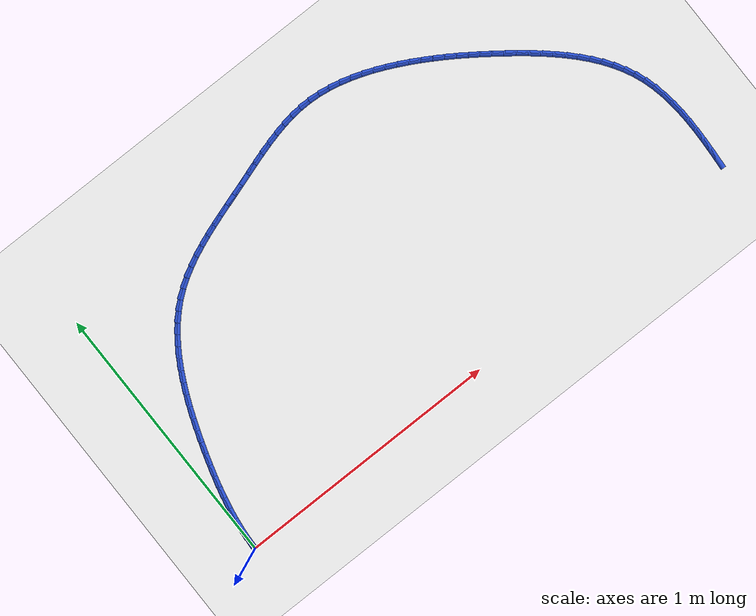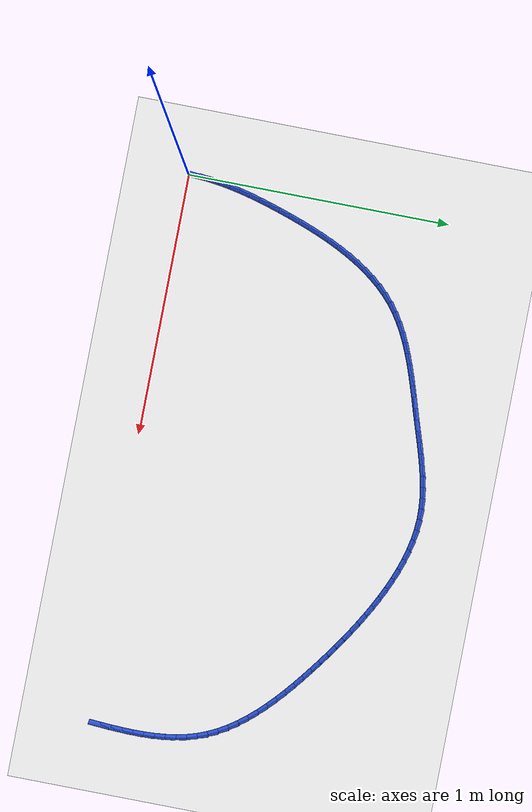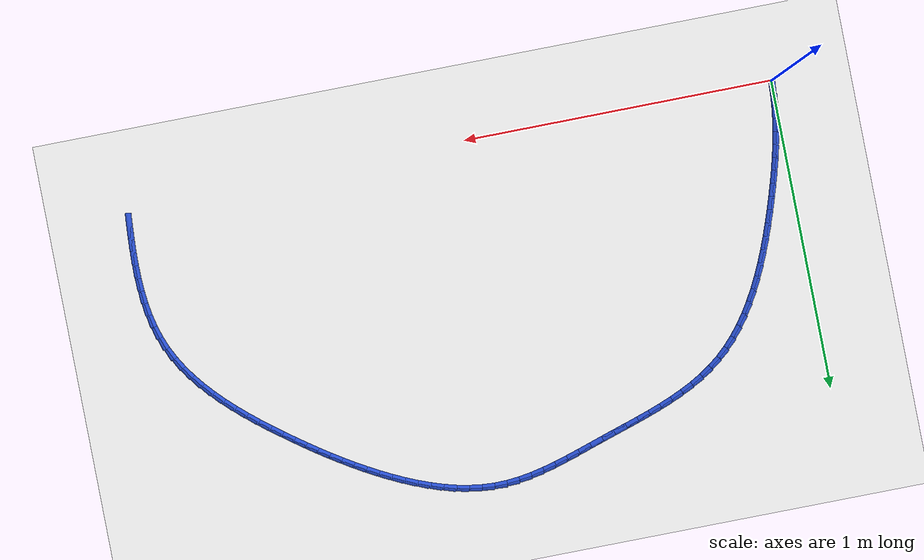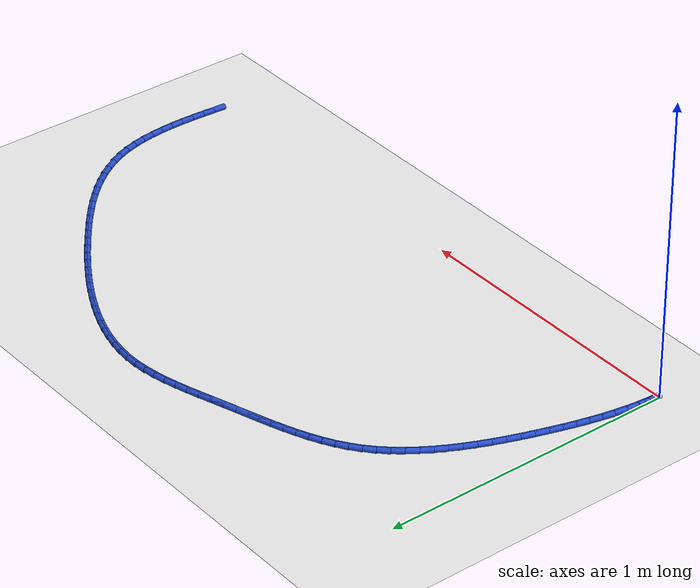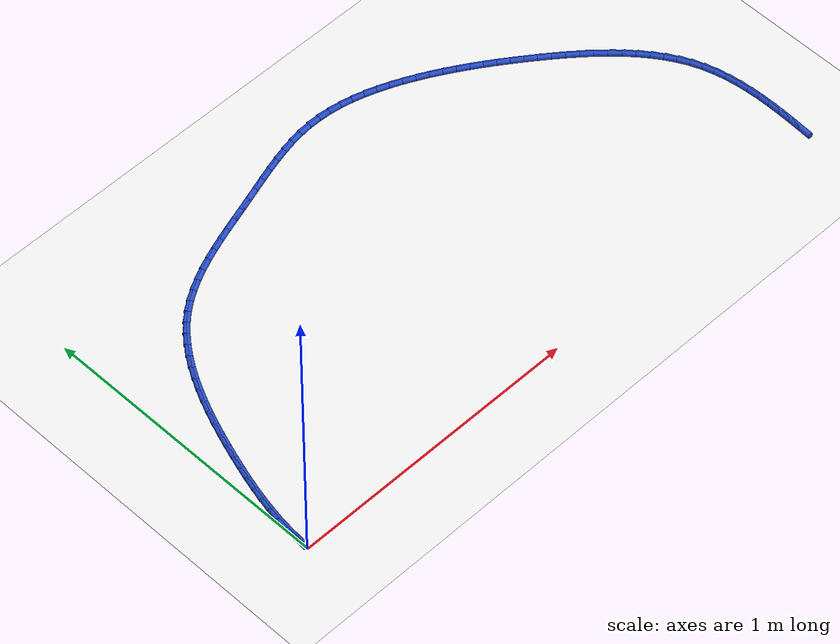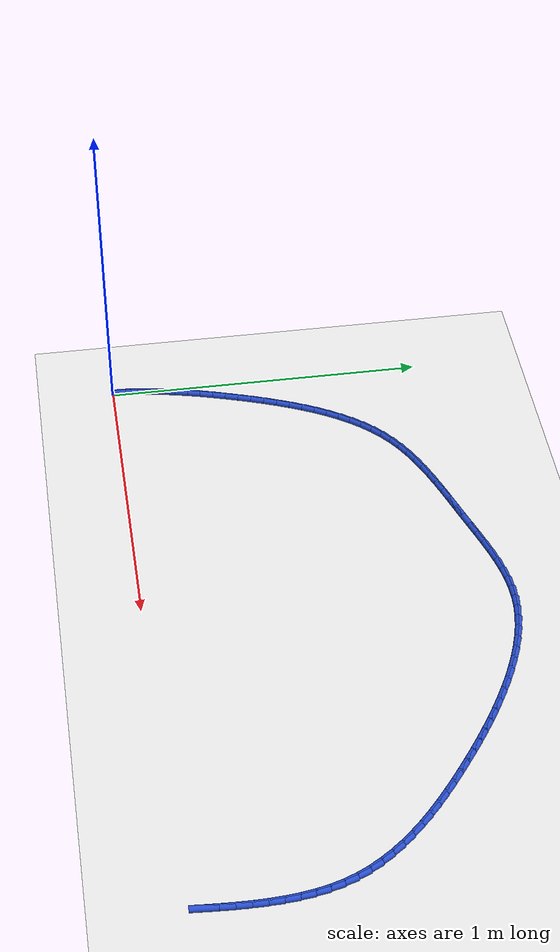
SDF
<sdf version="1.6">
 <world name="default">
  <model name="ground_plane">
   <static>1</static>
   <link name="link">
    <collision name="collision">
     <geometry><plane><normal>0 0 1</normal><size>100 100</size></plane></geometry>
     <surface><friction><ode><mu>100</mu><mu2>50</mu2></ode></friction></surface>
    </collision>
    <visual name="visual">
     <cast_shadows>0</cast_shadows>
     <geometry><plane><normal>0 0 1</normal><size>100 100</size></plane></geometry>
     <material>
      <script><uri>file://media/materials/scripts/gazebo.material</uri><name>Gazebo/WhiteGlow</name></script>
     </material>
    </visual>
   </link>
  </model>
  <model name="line">
   <link name="link_1">
    <pose>0.0016940753056678942 0.04102009919093619 0.01 0 1.57 1.4836181525590477</pose>
    <collision name="collision">
     <geometry><cylinder><radius>0.01</radius><length>0.08</length></cylinder></geometry>
    </collision>
    <visual name="visual">
     <material>
      <script><name>Gazebo/Blue</name><uri>file://media/materials/scripts/gazebo.material</uri></script>
     </material>
     <geometry><cylinder><radius>0.01</radius><length>0.08</length></cylinder></geometry>
    </visual>
   </link>
   <link name="link_2">
    <pose>0.00526283917718724 0.08185277789360729 0.01 0 1.57 1.441261052110527</pose>
    <collision name="collision">
     <geometry><cylinder><radius>0.01</radius><length>0.08</length></cylinder></geometry>
    </collision>
    <visual name="visual">
     <material>
      <script><name>Gazebo/Blue</name><uri>file://media/materials/scripts/gazebo.material</uri></script>
     </material>
     <geometry><cylinder><radius>0.01</radius><length>0.08</length></cylinder></geometry>
    </visual>
   </link>
   <link name="link_3">
    <pose>0.010562880971389308 0.12253949257791172 0.01 0 1.57 1.402671206864249</pose>
    <collision name="collision">
     <geometry><cylinder><radius>0.01</radius><length>0.08</length></cylinder></geometry>
    </collision>
    <visual name="visual">
     <material>
      <script><name>Gazebo/Blue</name><uri>file://media/materials/scripts/gazebo.material</uri></script>
     </material>
     <geometry><cylinder><radius>0.01</radius><length>0.08</length></cylinder></geometry>
    </visual>
   </link>
   <link name="link_4">
    <pose>0.01745079004510542 0.16312169971374776 0.01 0 1.57 1.3679834656666097</pose>
    <collision name="collision">
     <geometry><cylinder><radius>0.01</radius><length>0.08</length></cylinder></geometry>
    </collision>
    <visual name="visual">
     <material>
      <script><name>Gazebo/Blue</name><uri>file://media/materials/scripts/gazebo.material</uri></script>
     </material>
     <geometry><cylinder><radius>0.01</radius><length>0.08</length></cylinder></geometry>
    </visual>
   </link>
   <link name="link_5">
    <pose>0.02578315575516693 0.2036408557710138 0.01 0 1.57 1.3372603106143606</pose>
    <collision name="collision">
     <geometry><cylinder><radius>0.01</radius><length>0.08</length></cylinder></geometry>
    </collision>
    <visual name="visual">
     <material>
      <script><name>Gazebo/Blue</name><uri>file://media/materials/scripts/gazebo.material</uri></script>
     </material>
     <geometry><cylinder><radius>0.01</radius><length>0.08</length></cylinder></geometry>
    </visual>
   </link>
   <link name="link_6">
    <pose>0.03541656745840518 0.2441384172196081 0.01 0 1.57 1.3105073156449456</pose>
    <collision name="collision">
     <geometry><cylinder><radius>0.01</radius><length>0.08</length></cylinder></geometry>
    </collision>
    <visual name="visual">
     <material>
      <script><name>Gazebo/Blue</name><uri>file://media/materials/scripts/gazebo.material</uri></script>
     </material>
     <geometry><cylinder><radius>0.01</radius><length>0.08</length></cylinder></geometry>
    </visual>
   </link>
   <link name="link_7">
    <pose>0.04620761451165147 0.2846558405294289 0.01 0 1.57 1.2876881151883557</pose>
    <collision name="collision">
     <geometry><cylinder><radius>0.01</radius><length>0.08</length></cylinder></geometry>
    </collision>
    <visual name="visual">
     <material>
      <script><name>Gazebo/Blue</name><uri>file://media/materials/scripts/gazebo.material</uri></script>
     </material>
     <geometry><cylinder><radius>0.01</radius><length>0.08</length></cylinder></geometry>
    </visual>
   </link>
   <link name="link_8">
    <pose>0.05801288627173715 0.3252345821703746 0.01 0 1.57 1.2687377520558818</pose>
    <collision name="collision">
     <geometry><cylinder><radius>0.01</radius><length>0.08</length></cylinder></geometry>
    </collision>
    <visual name="visual">
     <material>
      <script><name>Gazebo/Blue</name><uri>file://media/materials/scripts/gazebo.material</uri></script>
     </material>
     <geometry><cylinder><radius>0.01</radius><length>0.08</length></cylinder></geometry>
    </visual>
   </link>
   <link name="link_9">
    <pose>0.07068897209549357 0.36591609861234353 0.01 0 1.57 1.2533195616153858</pose>
    <collision name="collision">
     <geometry><cylinder><radius>0.01</radius><length>0.08</length></cylinder></geometry>
    </collision>
    <visual name="visual">
     <material>
      <script><name>Gazebo/Blue</name><uri>file://media/materials/scripts/gazebo.material</uri></script>
     </material>
     <geometry><cylinder><radius>0.01</radius><length>0.08</length></cylinder></geometry>
    </visual>
   </link>
   <link name="link_10">
    <pose>0.08410109394157478 0.40673311828321956 0.01 0 1.57 1.2373657290991258</pose>
    <collision name="collision">
     <geometry><cylinder><radius>0.01</radius><length>0.08</length></cylinder></geometry>
    </collision>
    <visual name="visual">
     <material>
      <script><name>Gazebo/Blue</name><uri>file://media/materials/scripts/gazebo.material</uri></script>
     </material>
     <geometry><cylinder><radius>0.01</radius><length>0.08</length></cylinder></geometry>
    </visual>
   </link>
   <link name="link_11">
    <pose>0.09824954599700263 0.4475818040529693 0.01 0 1.57 1.217608481108015</pose>
    <collision name="collision">
     <geometry><cylinder><radius>0.01</radius><length>0.08</length></cylinder></geometry>
    </collision>
    <visual name="visual">
     <material>
      <script><name>Gazebo/Blue</name><uri>file://media/materials/scripts/gazebo.material</uri></script>
     </material>
     <geometry><cylinder><radius>0.01</radius><length>0.08</length></cylinder></geometry>
    </visual>
   </link>
   <link name="link_12">
    <pose>0.11324170555073036 0.48825005180185016 0.01 0 1.57 1.193781997664022</pose>
    <collision name="collision">
     <geometry><cylinder><radius>0.01</radius><length>0.08</length></cylinder></geometry>
    </collision>
    <visual name="visual">
     <material>
      <script><name>Gazebo/Blue</name><uri>file://media/materials/scripts/gazebo.material</uri></script>
     </material>
     <geometry><cylinder><radius>0.01</radius><length>0.08</length></cylinder></geometry>
    </visual>
   </link>
   <link name="link_13">
    <pose>0.12918788988161972 0.528522784916314 0.01 0 1.57 1.1656390461936397</pose>
    <collision name="collision">
     <geometry><cylinder><radius>0.01</radius><length>0.08</length></cylinder></geometry>
    </collision>
    <visual name="visual">
     <material>
      <script><name>Gazebo/Blue</name><uri>file://media/materials/scripts/gazebo.material</uri></script>
     </material>
     <geometry><cylinder><radius>0.01</radius><length>0.08</length></cylinder></geometry>
    </visual>
   </link>
   <link name="link_14">
    <pose>0.1461984162685323 0.5681849267828125 0.01 0 1.57 1.1328696306898038</pose>
    <collision name="collision">
     <geometry><cylinder><radius>0.01</radius><length>0.08</length></cylinder></geometry>
    </collision>
    <visual name="visual">
     <material>
      <script><name>Gazebo/Blue</name><uri>file://media/materials/scripts/gazebo.material</uri></script>
     </material>
     <geometry><cylinder><radius>0.01</radius><length>0.08</length></cylinder></geometry>
    </visual>
   </link>
   <link name="link_15">
    <pose>0.16438360199032978 0.6070214007877978 0.01 0 1.57 1.0951087397610708</pose>
    <collision name="collision">
     <geometry><cylinder><radius>0.01</radius><length>0.08</length></cylinder></geometry>
    </collision>
    <visual name="visual">
     <material>
      <script><name>Gazebo/Blue</name><uri>file://media/materials/scripts/gazebo.material</uri></script>
     </material>
     <geometry><cylinder><radius>0.01</radius><length>0.08</length></cylinder></geometry>
    </visual>
   </link>
   <link name="link_16">
    <pose>0.18385376432587386 0.6448171303177218 0.01 0 1.57 1.0519492333334464</pose>
    <collision name="collision">
     <geometry><cylinder><radius>0.01</radius><length>0.08</length></cylinder></geometry>
    </collision>
    <visual name="visual">
     <material>
      <script><name>Gazebo/Blue</name><uri>file://media/materials/scripts/gazebo.material</uri></script>
     </material>
     <geometry><cylinder><radius>0.01</radius><length>0.08</length></cylinder></geometry>
    </visual>
   </link>
   <link name="link_17">
    <pose>0.20471922055402605 0.6813570387590363 0.01 0 1.57 1.002963285717442</pose>
    <collision name="collision">
     <geometry><cylinder><radius>0.01</radius><length>0.08</length></cylinder></geometry>
    </collision>
    <visual name="visual">
     <material>
      <script><name>Gazebo/Blue</name><uri>file://media/materials/scripts/gazebo.material</uri></script>
     </material>
     <geometry><cylinder><radius>0.01</radius><length>0.08</length></cylinder></geometry>
    </visual>
   </link>
   <link name="link_18">
    <pose>0.22709028795364813 0.7164260494981931 0.01 0 1.57 0.9477364884585241</pose>
    <collision name="collision">
     <geometry><cylinder><radius>0.01</radius><length>0.08</length></cylinder></geometry>
    </collision>
    <visual name="visual">
     <material>
      <script><name>Gazebo/Blue</name><uri>file://media/materials/scripts/gazebo.material</uri></script>
     </material>
     <geometry><cylinder><radius>0.01</radius><length>0.08</length></cylinder></geometry>
    </visual>
   </link>
   <link name="link_19">
    <pose>0.2510772838036017 0.7498090859216442 0.01 0 1.57 0.8859188049033503</pose>
    <collision name="collision">
     <geometry><cylinder><radius>0.01</radius><length>0.08</length></cylinder></geometry>
    </collision>
    <visual name="visual">
     <material>
      <script><name>Gazebo/Blue</name><uri>file://media/materials/scripts/gazebo.material</uri></script>
     </material>
     <geometry><cylinder><radius>0.01</radius><length>0.08</length></cylinder></geometry>
    </visual>
   </link>
   <link name="link_20">
    <pose>0.2767905253827485 0.7812910714158415 0.01 0 1.57 0.8172951377439855</pose>
    <collision name="collision">
     <geometry><cylinder><radius>0.01</radius><length>0.08</length></cylinder></geometry>
    </collision>
    <visual name="visual">
     <material>
      <script><name>Gazebo/Blue</name><uri>file://media/materials/scripts/gazebo.material</uri></script>
     </material>
     <geometry><cylinder><radius>0.01</radius><length>0.08</length></cylinder></geometry>
    </visual>
   </link>
   <link name="link_21">
    <pose>0.30434032996995014 0.810656929367237 0.01 0 1.57 0.7418740528319384</pose>
    <collision name="collision">
     <geometry><cylinder><radius>0.01</radius><length>0.08</length></cylinder></geometry>
    </collision>
    <visual name="visual">
     <material>
      <script><name>Gazebo/Blue</name><uri>file://media/materials/scripts/gazebo.material</uri></script>
     </material>
     <geometry><cylinder><radius>0.01</radius><length>0.08</length></cylinder></geometry>
    </visual>
   </link>
   <link name="link_22">
    <pose>0.33383701484406814 0.8376915831622822 0.01 0 1.57 0.6610400251546933</pose>
    <collision name="collision">
     <geometry><cylinder><radius>0.01</radius><length>0.08</length></cylinder></geometry>
    </collision>
    <visual name="visual">
     <material>
      <script><name>Gazebo/Blue</name><uri>file://media/materials/scripts/gazebo.material</uri></script>
     </material>
     <geometry><cylinder><radius>0.01</radius><length>0.08</length></cylinder></geometry>
    </visual>
   </link>
   <link name="link_23">
    <pose>0.36536748216538006 0.8622151208831176 0.01 0 1.57 0.5845602938426694</pose>
    <collision name="collision">
     <geometry><cylinder><radius>0.01</radius><length>0.08</length></cylinder></geometry>
    </collision>
    <visual name="visual">
     <material>
      <script><name>Gazebo/Blue</name><uri>file://media/materials/scripts/gazebo.material</uri></script>
     </material>
     <geometry><cylinder><radius>0.01</radius><length>0.08</length></cylinder></geometry>
    </visual>
   </link>
   <link name="link_24">
    <pose>0.39881773146359645 0.8843493450722034 0.01 0 1.57 0.517694273193901</pose>
    <collision name="collision">
     <geometry><cylinder><radius>0.01</radius><length>0.08</length></cylinder></geometry>
    </collision>
    <visual name="visual">
     <material>
      <script><name>Gazebo/Blue</name><uri>file://media/materials/scripts/gazebo.material</uri></script>
     </material>
     <geometry><cylinder><radius>0.01</radius><length>0.08</length></cylinder></geometry>
    </visual>
   </link>
   <link name="link_25">
    <pose>0.43397153348185524 0.9043695848987165 0.01 0 1.57 0.4606440549411995</pose>
    <collision name="collision">
     <geometry><cylinder><radius>0.01</radius><length>0.08</length></cylinder></geometry>
    </collision>
    <visual name="visual">
     <material>
      <script><name>Gazebo/Blue</name><uri>file://media/materials/scripts/gazebo.material</uri></script>
     </material>
     <geometry><cylinder><radius>0.01</radius><length>0.08</length></cylinder></geometry>
    </visual>
   </link>
   <link name="link_26">
    <pose>0.4706118496830646 0.9225523849044123 0.01 0 1.57 0.413215427790466</pose>
    <collision name="collision">
     <geometry><cylinder><radius>0.01</radius><length>0.08</length></cylinder></geometry>
    </collision>
    <visual name="visual">
     <material>
      <script><name>Gazebo/Blue</name><uri>file://media/materials/scripts/gazebo.material</uri></script>
     </material>
     <geometry><cylinder><radius>0.01</radius><length>0.08</length></cylinder></geometry>
    </visual>
   </link>
   <link name="link_27">
    <pose>0.5085216415301321 0.9391742896310457 0.01 0 1.57 0.37502189391123536</pose>
    <collision name="collision">
     <geometry><cylinder><radius>0.01</radius><length>0.08</length></cylinder></geometry>
    </collision>
    <visual name="visual">
     <material>
      <script><name>Gazebo/Blue</name><uri>file://media/materials/scripts/gazebo.material</uri></script>
     </material>
     <geometry><cylinder><radius>0.01</radius><length>0.08</length></cylinder></geometry>
    </visual>
   </link>
   <link name="link_28">
    <pose>0.5474838704859656 0.9545118436203719 0.01 0 1.57 0.34561345637982777</pose>
    <collision name="collision">
     <geometry><cylinder><radius>0.01</radius><length>0.08</length></cylinder></geometry>
    </collision>
    <visual name="visual">
     <material>
      <script><name>Gazebo/Blue</name><uri>file://media/materials/scripts/gazebo.material</uri></script>
     </material>
     <geometry><cylinder><radius>0.01</radius><length>0.08</length></cylinder></geometry>
    </visual>
   </link>
   <link name="link_29">
    <pose>0.5872814980134727 0.9688415914141462 0.01 0 1.57 0.3245646430097049</pose>
    <collision name="collision">
     <geometry><cylinder><radius>0.01</radius><length>0.08</length></cylinder></geometry>
    </collision>
    <visual name="visual">
     <material>
      <script><name>Gazebo/Blue</name><uri>file://media/materials/scripts/gazebo.material</uri></script>
     </material>
     <geometry><cylinder><radius>0.01</radius><length>0.08</length></cylinder></geometry>
    </visual>
   </link>
   <link name="link_30">
    <pose>0.6276974855755613 0.9824400775541233 0.01 0 1.57 0.3115293324298856</pose>
    <collision name="collision">
     <geometry><cylinder><radius>0.01</radius><length>0.08</length></cylinder></geometry>
    </collision>
    <visual name="visual">
     <material>
      <script><name>Gazebo/Blue</name><uri>file://media/materials/scripts/gazebo.material</uri></script>
     </material>
     <geometry><cylinder><radius>0.01</radius><length>0.08</length></cylinder></geometry>
    </visual>
   </link>
   <link name="link_31">
    <pose>0.6685147946351391 0.9955838465820589 0.01 0 1.57 0.3062719283524712</pose>
    <collision name="collision">
     <geometry><cylinder><radius>0.01</radius><length>0.08</length></cylinder></geometry>
    </collision>
    <visual name="visual">
     <material>
      <script><name>Gazebo/Blue</name><uri>file://media/materials/scripts/gazebo.material</uri></script>
     </material>
     <geometry><cylinder><radius>0.01</radius><length>0.08</length></cylinder></geometry>
    </visual>
   </link>
   <link name="link_32">
    <pose>0.7095163866551143 1.008549443039708 0.01 0 1.57 0.30867940138229516</pose>
    <collision name="collision">
     <geometry><cylinder><radius>0.01</radius><length>0.08</length></cylinder></geometry>
    </collision>
    <visual name="visual">
     <material>
      <script><name>Gazebo/Blue</name><uri>file://media/materials/scripts/gazebo.material</uri></script>
     </material>
     <geometry><cylinder><radius>0.01</radius><length>0.08</length></cylinder></geometry>
    </visual>
   </link>
   <link name="link_33">
    <pose>0.7504852741185585 1.021613274740743 0.01 0 1.57 0.3149096828438092</pose>
    <collision name="collision">
     <geometry><cylinder><radius>0.01</radius><length>0.08</length></cylinder></geometry>
    </collision>
    <visual name="visual">
     <material>
      <script><name>Gazebo/Blue</name><uri>file://media/materials/scripts/gazebo.material</uri></script>
     </material>
     <geometry><cylinder><radius>0.01</radius><length>0.08</length></cylinder></geometry>
    </visual>
   </link>
   <link name="link_34">
    <pose>0.7912624325428919 1.0348964153355842 0.01 0 1.57 0.31370150610140723</pose>
    <collision name="collision">
     <geometry><cylinder><radius>0.01</radius><length>0.08</length></cylinder></geometry>
    </collision>
    <visual name="visual">
     <material>
      <script><name>Gazebo/Blue</name><uri>file://media/materials/scripts/gazebo.material</uri></script>
     </material>
     <geometry><cylinder><radius>0.01</radius><length>0.08</length></cylinder></geometry>
    </visual>
   </link>
   <link name="link_35">
    <pose>0.8318581429962248 1.0480662193699388 0.01 0 1.57 0.30286563058093263</pose>
    <collision name="collision">
     <geometry><cylinder><radius>0.01</radius><length>0.08</length></cylinder></geometry>
    </collision>
    <visual name="visual">
     <material>
      <script><name>Gazebo/Blue</name><uri>file://media/materials/scripts/gazebo.material</uri></script>
     </material>
     <geometry><cylinder><radius>0.01</radius><length>0.08</length></cylinder></geometry>
    </visual>
   </link>
   <link name="link_36">
    <pose>0.8723134334201893 1.0607076433590354 0.01 0 1.57 0.2821383303547089</pose>
    <collision name="collision">
     <geometry><cylinder><radius>0.01</radius><length>0.08</length></cylinder></geometry>
    </collision>
    <visual name="visual">
     <material>
      <script><name>Gazebo/Blue</name><uri>file://media/materials/scripts/gazebo.material</uri></script>
     </material>
     <geometry><cylinder><radius>0.01</radius><length>0.08</length></cylinder></geometry>
    </visual>
   </link>
   <link name="link_37">
    <pose>0.9126693317564154 1.0724056438181009 0.01 0 1.57 0.25116176876552576</pose>
    <collision name="collision">
     <geometry><cylinder><radius>0.01</radius><length>0.08</length></cylinder></geometry>
    </collision>
    <visual name="visual">
     <material>
      <script><name>Gazebo/Blue</name><uri>file://media/materials/scripts/gazebo.material</uri></script>
     </material>
     <geometry><cylinder><radius>0.01</radius><length>0.08</length></cylinder></geometry>
    </visual>
   </link>
   <link name="link_38">
    <pose>0.9529668659465347 1.0827451772623633 0.01 0 1.57 0.20953933117501528</pose>
    <collision name="collision">
     <geometry><cylinder><radius>0.01</radius><length>0.08</length></cylinder></geometry>
    </collision>
    <visual name="visual">
     <material>
      <script><name>Gazebo/Blue</name><uri>file://media/materials/scripts/gazebo.material</uri></script>
     </material>
     <geometry><cylinder><radius>0.01</radius><length>0.08</length></cylinder></geometry>
    </visual>
   </link>
   <link name="link_39">
    <pose>0.9932470639321782 1.0913112002070509 0.01 0 1.57 0.15693343383750571</pose>
    <collision name="collision">
     <geometry><cylinder><radius>0.01</radius><length>0.08</length></cylinder></geometry>
    </collision>
    <visual name="visual">
     <material>
      <script><name>Gazebo/Blue</name><uri>file://media/materials/scripts/gazebo.material</uri></script>
     </material>
     <geometry><cylinder><radius>0.01</radius><length>0.08</length></cylinder></geometry>
    </visual>
   </link>
   <link name="link_40">
    <pose>1.0335509536549763 1.097688669167391 0.01 0 1.57 0.09321437920420347</pose>
    <collision name="collision">
     <geometry><cylinder><radius>0.01</radius><length>0.08</length></cylinder></geometry>
    </collision>
    <visual name="visual">
     <material>
      <script><name>Gazebo/Blue</name><uri>file://media/materials/scripts/gazebo.material</uri></script>
     </material>
     <geometry><cylinder><radius>0.01</radius><length>0.08</length></cylinder></geometry>
    </visual>
   </link>
   <link name="link_41">
    <pose>1.0739195630565608 1.1014625406586114 0.01 0 1.57 0.018663360482117326</pose>
    <collision name="collision">
     <geometry><cylinder><radius>0.01</radius><length>0.08</length></cylinder></geometry>
    </collision>
    <visual name="visual">
     <material>
      <script><name>Gazebo/Blue</name><uri>file://media/materials/scripts/gazebo.material</uri></script>
     </material>
     <geometry><cylinder><radius>0.01</radius><length>0.08</length></cylinder></geometry>
    </visual>
   </link>
   <link name="link_42">
    <pose>1.1143938673068394 1.102218014906989 0.01 0 1.57 -0.061863083195858676</pose>
    <collision name="collision">
     <geometry><cylinder><radius>0.01</radius><length>0.08</length></cylinder></geometry>
    </collision>
    <visual name="visual">
     <material>
      <script><name>Gazebo/Blue</name><uri>file://media/materials/scripts/gazebo.material</uri></script>
     </material>
     <geometry><cylinder><radius>0.01</radius><length>0.08</length></cylinder></geometry>
    </visual>
   </link>
   <link name="link_43">
    <pose>1.1549793798032189 1.0997040621522185 0.01 0 1.57 -0.13672560935731223</pose>
    <collision name="collision">
     <geometry><cylinder><radius>0.01</radius><length>0.08</length></cylinder></geometry>
    </collision>
    <visual name="visual">
     <material>
      <script><name>Gazebo/Blue</name><uri>file://media/materials/scripts/gazebo.material</uri></script>
     </material>
     <geometry><cylinder><radius>0.01</radius><length>0.08</length></cylinder></geometry>
    </visual>
   </link>
   <link name="link_44">
    <pose>1.1955846558857024 1.0941174255805108 0.01 0 1.57 -0.2041098291954975</pose>
    <collision name="collision">
     <geometry><cylinder><radius>0.01</radius><length>0.08</length></cylinder></geometry>
    </collision>
    <visual name="visual">
     <material>
      <script><name>Gazebo/Blue</name><uri>file://media/materials/scripts/gazebo.material</uri></script>
     </material>
     <geometry><cylinder><radius>0.01</radius><length>0.08</length></cylinder></geometry>
    </visual>
   </link>
   <link name="link_45">
    <pose>1.2361018305565772 1.0857306809927072 0.01 0 1.57 -0.264348575901726</pose>
    <collision name="collision">
     <geometry><cylinder><radius>0.01</radius><length>0.08</length></cylinder></geometry>
    </collision>
    <visual name="visual">
     <material>
      <script><name>Gazebo/Blue</name><uri>file://media/materials/scripts/gazebo.material</uri></script>
     </material>
     <geometry><cylinder><radius>0.01</radius><length>0.08</length></cylinder></geometry>
    </visual>
   </link>
   <link name="link_46">
    <pose>1.2764230388181306 1.0748164041896482 0.01 0 1.57 -0.3179247812549229</pose>
    <collision name="collision">
     <geometry><cylinder><radius>0.01</radius><length>0.08</length></cylinder></geometry>
    </collision>
    <visual name="visual">
     <material>
      <script><name>Gazebo/Blue</name><uri>file://media/materials/scripts/gazebo.material</uri></script>
     </material>
     <geometry><cylinder><radius>0.01</radius><length>0.08</length></cylinder></geometry>
    </visual>
   </link>
   <link name="link_47">
    <pose>1.3164404156726492 1.061647170972174 0.01 0 1.57 -0.3653835118112259</pose>
    <collision name="collision">
     <geometry><cylinder><radius>0.01</radius><length>0.08</length></cylinder></geometry>
    </collision>
    <visual name="visual">
     <material>
      <script><name>Gazebo/Blue</name><uri>file://media/materials/scripts/gazebo.material</uri></script>
     </material>
     <geometry><cylinder><radius>0.01</radius><length>0.08</length></cylinder></geometry>
    </visual>
   </link>
   <link name="link_48">
    <pose>1.356046096122421 1.0464955571411256 0.01 0 1.57 -0.4072718067524072</pose>
    <collision name="collision">
     <geometry><cylinder><radius>0.01</radius><length>0.08</length></cylinder></geometry>
    </collision>
    <visual name="visual">
     <material>
      <script><name>Gazebo/Blue</name><uri>file://media/materials/scripts/gazebo.material</uri></script>
     </material>
     <geometry><cylinder><radius>0.01</radius><length>0.08</length></cylinder></geometry>
    </visual>
   </link>
   <link name="link_49">
    <pose>1.3951322151697316 1.029634138497343 0.01 0 1.57 -0.4441008981339359</pose>
    <collision name="collision">
     <geometry><cylinder><radius>0.01</radius><length>0.08</length></cylinder></geometry>
    </collision>
    <visual name="visual">
     <material>
      <script><name>Gazebo/Blue</name><uri>file://media/materials/scripts/gazebo.material</uri></script>
     </material>
     <geometry><cylinder><radius>0.01</radius><length>0.08</length></cylinder></geometry>
    </visual>
   </link>
   <link name="link_50">
    <pose>1.4335909078168685 1.0113354908416672 0.01 0 1.57 -0.4763241944336851</pose>
    <collision name="collision">
     <geometry><cylinder><radius>0.01</radius><length>0.08</length></cylinder></geometry>
    </collision>
    <visual name="visual">
     <material>
      <script><name>Gazebo/Blue</name><uri>file://media/materials/scripts/gazebo.material</uri></script>
     </material>
     <geometry><cylinder><radius>0.01</radius><length>0.08</length></cylinder></geometry>
    </visual>
   </link>
   <link name="link_51">
    <pose>1.47131430906612 0.9918721899749388 0.01 0 1.57 -0.5043252182486192</pose>
    <collision name="collision">
     <geometry><cylinder><radius>0.01</radius><length>0.08</length></cylinder></geometry>
    </collision>
    <visual name="visual">
     <material>
      <script><name>Gazebo/Blue</name><uri>file://media/materials/scripts/gazebo.material</uri></script>
     </material>
     <geometry><cylinder><radius>0.01</radius><length>0.08</length></cylinder></geometry>
    </visual>
   </link>
   <link name="link_52">
    <pose>1.5081945640054275 0.9715168011389465 0.01 0 1.57 -0.5289346034649841</pose>
    <collision name="collision">
     <geometry><cylinder><radius>0.01</radius><length>0.08</length></cylinder></geometry>
    </collision>
    <visual name="visual">
     <material>
      <script><name>Gazebo/Blue</name><uri>file://media/materials/scripts/gazebo.material</uri></script>
     </material>
     <geometry><cylinder><radius>0.01</radius><length>0.08</length></cylinder></geometry>
    </visual>
   </link>
   <link name="link_53">
    <pose>1.5441784429977714 0.950484700328986 0.01 0 1.57 -0.5519147126262431</pose>
    <collision name="collision">
     <geometry><cylinder><radius>0.01</radius><length>0.08</length></cylinder></geometry>
    </collision>
    <visual name="visual">
     <material>
      <script><name>Gazebo/Blue</name><uri>file://media/materials/scripts/gazebo.material</uri></script>
     </material>
     <geometry><cylinder><radius>0.01</radius><length>0.08</length></cylinder></geometry>
    </visual>
   </link>
   <link name="link_54">
    <pose>1.579395147887068 0.9288002691897533 0.01 0 1.57 -0.5733495858450668</pose>
    <collision name="collision">
     <geometry><cylinder><radius>0.01</radius><length>0.08</length></cylinder></geometry>
    </collision>
    <visual name="visual">
     <material>
      <script><name>Gazebo/Blue</name><uri>file://media/materials/scripts/gazebo.material</uri></script>
     </material>
     <geometry><cylinder><radius>0.01</radius><length>0.08</length></cylinder></geometry>
    </visual>
   </link>
   <link name="link_55">
    <pose>1.6140119192119413 0.9064480652316694 0.01 0 1.57 -0.5929688252541696</pose>
    <collision name="collision">
     <geometry><cylinder><radius>0.01</radius><length>0.08</length></cylinder></geometry>
    </collision>
    <visual name="visual">
     <material>
      <script><name>Gazebo/Blue</name><uri>file://media/materials/scripts/gazebo.material</uri></script>
     </material>
     <geometry><cylinder><radius>0.01</radius><length>0.08</length></cylinder></geometry>
    </visual>
   </link>
   <link name="link_56">
    <pose>1.648195997511015 0.8834126459651539 0.01 0 1.57 -0.610548632824417</pose>
    <collision name="collision">
     <geometry><cylinder><radius>0.01</radius><length>0.08</length></cylinder></geometry>
    </collision>
    <visual name="visual">
     <material>
      <script><name>Gazebo/Blue</name><uri>file://media/materials/scripts/gazebo.material</uri></script>
     </material>
     <geometry><cylinder><radius>0.01</radius><length>0.08</length></cylinder></geometry>
    </visual>
   </link>
   <link name="link_57">
    <pose>1.682114623322912 0.859678568900628 0.01 0 1.57 -0.625918684527478</pose>
    <collision name="collision">
     <geometry><cylinder><radius>0.01</radius><length>0.08</length></cylinder></geometry>
    </collision>
    <visual name="visual">
     <material>
      <script><name>Gazebo/Blue</name><uri>file://media/materials/scripts/gazebo.material</uri></script>
     </material>
     <geometry><cylinder><radius>0.01</radius><length>0.08</length></cylinder></geometry>
    </visual>
   </link>
   <link name="link_58">
    <pose>1.7159350371862565 0.8352303915485114 0.01 0 1.57 -0.6391139453068592</pose>
    <collision name="collision">
     <geometry><cylinder><radius>0.01</radius><length>0.08</length></cylinder></geometry>
    </collision>
    <visual name="visual">
     <material>
      <script><name>Gazebo/Blue</name><uri>file://media/materials/scripts/gazebo.material</uri></script>
     </material>
     <geometry><cylinder><radius>0.01</radius><length>0.08</length></cylinder></geometry>
    </visual>
   </link>
   <link name="link_59">
    <pose>1.7498148541892842 0.8100520128253015 0.01 0 1.57 -0.6534657975726278</pose>
    <collision name="collision">
     <geometry><cylinder><radius>0.01</radius><length>0.08</length></cylinder></geometry>
    </collision>
    <visual name="visual">
     <material>
      <script><name>Gazebo/Blue</name><uri>file://media/materials/scripts/gazebo.material</uri></script>
     </material>
     <geometry><cylinder><radius>0.01</radius><length>0.08</length></cylinder></geometry>
    </visual>
   </link>
   <link name="link_60">
    <pose>1.7836924828760274 0.7841123330664211 0.01 0 1.57 -0.6723828446860911</pose>
    <collision name="collision">
     <geometry><cylinder><radius>0.01</radius><length>0.08</length></cylinder></geometry>
    </collision>
    <visual name="visual">
     <material>
      <script><name>Gazebo/Blue</name><uri>file://media/materials/scripts/gazebo.material</uri></script>
     </material>
     <geometry><cylinder><radius>0.01</radius><length>0.08</length></cylinder></geometry>
    </visual>
   </link>
   <link name="link_61">
    <pose>1.817288328909489 0.7573653363834301 0.01 0 1.57 -0.6961674003247227</pose>
    <collision name="collision">
     <geometry><cylinder><radius>0.01</radius><length>0.08</length></cylinder></geometry>
    </collision>
    <visual name="visual">
     <material>
      <script><name>Gazebo/Blue</name><uri>file://media/materials/scripts/gazebo.material</uri></script>
     </material>
     <geometry><cylinder><radius>0.01</radius><length>0.08</length></cylinder></geometry>
    </visual>
   </link>
   <link name="link_62">
    <pose>1.8503134132372085 0.7297643647655644 0.01 0 1.57 -0.7250803979246387</pose>
    <collision name="collision">
     <geometry><cylinder><radius>0.01</radius><length>0.08</length></cylinder></geometry>
    </collision>
    <visual name="visual">
     <material>
      <script><name>Gazebo/Blue</name><uri>file://media/materials/scripts/gazebo.material</uri></script>
     </material>
     <geometry><cylinder><radius>0.01</radius><length>0.08</length></cylinder></geometry>
    </visual>
   </link>
   <link name="link_63">
    <pose>1.8824787568067263 0.7012627602020596 0.01 0 1.57 -0.7594763305677511</pose>
    <collision name="collision">
     <geometry><cylinder><radius>0.01</radius><length>0.08</length></cylinder></geometry>
    </collision>
    <visual name="visual">
     <material>
      <script><name>Gazebo/Blue</name><uri>file://media/materials/scripts/gazebo.material</uri></script>
     </material>
     <geometry><cylinder><radius>0.01</radius><length>0.08</length></cylinder></geometry>
    </visual>
   </link>
   <link name="link_64">
    <pose>1.9134953805655814 0.6718138646821517 0.01 0 1.57 -0.7997906071380042</pose>
    <collision name="collision">
     <geometry><cylinder><radius>0.01</radius><length>0.08</length></cylinder></geometry>
    </collision>
    <visual name="visual">
     <material>
      <script><name>Gazebo/Blue</name><uri>file://media/materials/scripts/gazebo.material</uri></script>
     </material>
     <geometry><cylinder><radius>0.01</radius><length>0.08</length></cylinder></geometry>
    </visual>
   </link>
   <link name="link_65">
    <pose>1.943074305461313 0.6413710201950757 0.01 0 1.57 -0.8465195726522055</pose>
    <collision name="collision">
     <geometry><cylinder><radius>0.01</radius><length>0.08</length></cylinder></geometry>
    </collision>
    <visual name="visual">
     <material>
      <script><name>Gazebo/Blue</name><uri>file://media/materials/scripts/gazebo.material</uri></script>
     </material>
     <geometry><cylinder><radius>0.01</radius><length>0.08</length></cylinder></geometry>
    </visual>
   </link>
   <link name="link_66">
    <pose>1.9709265524414619 0.6098875687300676 0.01 0 1.57 -0.9001872768823145</pose>
    <collision name="collision">
     <geometry><cylinder><radius>0.01</radius><length>0.08</length></cylinder></geometry>
    </collision>
    <visual name="visual">
     <material>
      <script><name>Gazebo/Blue</name><uri>file://media/materials/scripts/gazebo.material</uri></script>
     </material>
     <geometry><cylinder><radius>0.01</radius><length>0.08</length></cylinder></geometry>
    </visual>
   </link>
   <link name="link_67">
    <pose>1.9967631424535661 0.577316852276363 0.01 0 1.57 -0.9612919098532383</pose>
    <collision name="collision">
     <geometry><cylinder><radius>0.01</radius><length>0.08</length></cylinder></geometry>
    </collision>
    <visual name="visual">
     <material>
      <script><name>Gazebo/Blue</name><uri>file://media/materials/scripts/gazebo.material</uri></script>
     </material>
     <geometry><cylinder><radius>0.01</radius><length>0.08</length></cylinder></geometry>
    </visual>
   </link>
   <link name="link_68">
    <pose>2.0202950964451665 0.5436122128231973 0.01 0 1.57 -1.0302249422182974</pose>
    <collision name="collision">
     <geometry><cylinder><radius>0.01</radius><length>0.08</length></cylinder></geometry>
    </collision>
    <visual name="visual">
     <material>
      <script><name>Gazebo/Blue</name><uri>file://media/materials/scripts/gazebo.material</uri></script>
     </material>
     <geometry><cylinder><radius>0.01</radius><length>0.08</length></cylinder></geometry>
    </visual>
   </link>
   <link name="link_69">
    <pose>2.041233435363802 0.5087269923598067 0.01 0 1.57 -1.1071594609357402</pose>
    <collision name="collision">
     <geometry><cylinder><radius>0.01</radius><length>0.08</length></cylinder></geometry>
    </collision>
    <visual name="visual">
     <material>
      <script><name>Gazebo/Blue</name><uri>file://media/materials/scripts/gazebo.material</uri></script>
     </material>
     <geometry><cylinder><radius>0.01</radius><length>0.08</length></cylinder></geometry>
    </visual>
   </link>
   <link name="link_70">
    <pose>2.0592891801570126 0.47261453287542643 0.01 0 1.57 -1.191651830527927</pose>
    <collision name="collision">
     <geometry><cylinder><radius>0.01</radius><length>0.08</length></cylinder></geometry>
    </collision>
    <visual name="visual">
     <material>
      <script><name>Gazebo/Blue</name><uri>file://media/materials/scripts/gazebo.material</uri></script>
     </material>
     <geometry><cylinder><radius>0.01</radius><length>0.08</length></cylinder></geometry>
    </visual>
   </link>
   <link name="link_71">
    <pose>2.074183337322672 0.435231577977146 0.01 0 1.57 -1.2758939323515583</pose>
    <collision name="collision">
     <geometry><cylinder><radius>0.01</radius><length>0.08</length></cylinder></geometry>
    </collision>
    <visual name="visual">
     <material>
      <script><name>Gazebo/Blue</name><uri>file://media/materials/scripts/gazebo.material</uri></script>
     </material>
     <geometry><cylinder><radius>0.01</radius><length>0.08</length></cylinder></geometry>
    </visual>
   </link>
   <link name="link_72">
    <pose>2.0859096153082564 0.39662776828719015 0.01 0 1.57 -1.351290595813787</pose>
    <collision name="collision">
     <geometry><cylinder><radius>0.01</radius><length>0.08</length></cylinder></geometry>
    </collision>
    <visual name="visual">
     <material>
      <script><name>Gazebo/Blue</name><uri>file://media/materials/scripts/gazebo.material</uri></script>
     </material>
     <geometry><cylinder><radius>0.01</radius><length>0.08</length></cylinder></geometry>
    </visual>
   </link>
   <link name="link_73">
    <pose>2.0947607190092348 0.3569545987694727 0.01 0 1.57 -1.4171863393546058</pose>
    <collision name="collision">
     <geometry><cylinder><radius>0.01</radius><length>0.08</length></cylinder></geometry>
    </collision>
    <visual name="visual">
     <material>
      <script><name>Gazebo/Blue</name><uri>file://media/materials/scripts/gazebo.material</uri></script>
     </material>
     <geometry><cylinder><radius>0.01</radius><length>0.08</length></cylinder></geometry>
    </visual>
   </link>
   <link name="link_74">
    <pose>2.1010446117442947 0.31636876223110305 0.01 0 1.57 -1.4737516445435916</pose>
    <collision name="collision">
     <geometry><cylinder><radius>0.01</radius><length>0.08</length></cylinder></geometry>
    </collision>
    <visual name="visual">
     <material>
      <script><name>Gazebo/Blue</name><uri>file://media/materials/scripts/gazebo.material</uri></script>
     </material>
     <geometry><cylinder><radius>0.01</radius><length>0.08</length></cylinder></geometry>
    </visual>
   </link>
   <link name="link_75">
    <pose>2.1050692568321243 0.2750269514791898 0.01 0 1.57 -1.521401469692525</pose>
    <collision name="collision">
     <geometry><cylinder><radius>0.01</radius><length>0.08</length></cylinder></geometry>
    </collision>
    <visual name="visual">
     <material>
      <script><name>Gazebo/Blue</name><uri>file://media/materials/scripts/gazebo.material</uri></script>
     </material>
     <geometry><cylinder><radius>0.01</radius><length>0.08</length></cylinder></geometry>
    </visual>
   </link>
   <link name="link_76">
    <pose>2.1071426175914123 0.23308585932084142 0.01 0 1.57 -1.5606503228294806</pose>
    <collision name="collision">
     <geometry><cylinder><radius>0.01</radius><length>0.08</length></cylinder></geometry>
    </collision>
    <visual name="visual">
     <material>
      <script><name>Gazebo/Blue</name><uri>file://media/materials/scripts/gazebo.material</uri></script>
     </material>
     <geometry><cylinder><radius>0.01</radius><length>0.08</length></cylinder></geometry>
    </visual>
   </link>
   <link name="link_77">
    <pose>2.1075726573408473 0.1907021785631674 0.01 0 1.57 1.5495825673429766</pose>
    <collision name="collision">
     <geometry><cylinder><radius>0.01</radius><length>0.08</length></cylinder></geometry>
    </collision>
    <visual name="visual">
     <material>
      <script><name>Gazebo/Blue</name><uri>file://media/materials/scripts/gazebo.material</uri></script>
     </material>
     <geometry><cylinder><radius>0.01</radius><length>0.08</length></cylinder></geometry>
    </visual>
   </link>
   <link name="link_78">
    <pose>2.106667339399118 0.14803260201327595 0.01 0 1.57 1.5256688681260615</pose>
    <collision name="collision">
     <geometry><cylinder><radius>0.01</radius><length>0.08</length></cylinder></geometry>
    </collision>
    <visual name="visual">
     <material>
      <script><name>Gazebo/Blue</name><uri>file://media/materials/scripts/gazebo.material</uri></script>
     </material>
     <geometry><cylinder><radius>0.01</radius><length>0.08</length></cylinder></geometry>
    </visual>
   </link>
   <link name="link_79">
    <pose>2.1047346270849125 0.10523382247827656 0.01 0 1.57 1.5088680544122581</pose>
    <collision name="collision">
     <geometry><cylinder><radius>0.01</radius><length>0.08</length></cylinder></geometry>
    </collision>
    <visual name="visual">
     <material>
      <script><name>Gazebo/Blue</name><uri>file://media/materials/scripts/gazebo.material</uri></script>
     </material>
     <geometry><cylinder><radius>0.01</radius><length>0.08</length></cylinder></geometry>
    </visual>
   </link>
   <link name="link_80">
    <pose>2.1020824837169187 0.06246253276527768 0.01 0 1.57 1.498958215360049</pose>
    <collision name="collision">
     <geometry><cylinder><radius>0.01</radius><length>0.08</length></cylinder></geometry>
    </collision>
    <visual name="visual">
     <material>
      <script><name>Gazebo/Blue</name><uri>file://media/materials/scripts/gazebo.material</uri></script>
     </material>
     <geometry><cylinder><radius>0.01</radius><length>0.08</length></cylinder></geometry>
    </visual>
   </link>
   <link name="link_161">
    <pose>0.0017258706465838533 0.04099577953008693 0.01 0 1.57 1.5287224313812893</pose>
    <collision name="collision">
     <geometry><cylinder><radius>0.01</radius><length>0.08</length></cylinder></geometry>
    </collision>
    <visual name="visual">
     <material>
      <script><name>Gazebo/Blue</name><uri>file://media/materials/scripts/gazebo.material</uri></script>
     </material>
     <geometry><cylinder><radius>0.01</radius><length>0.08</length></cylinder></geometry>
    </visual>
   </link>
  </model>
 </world>
</sdf>
